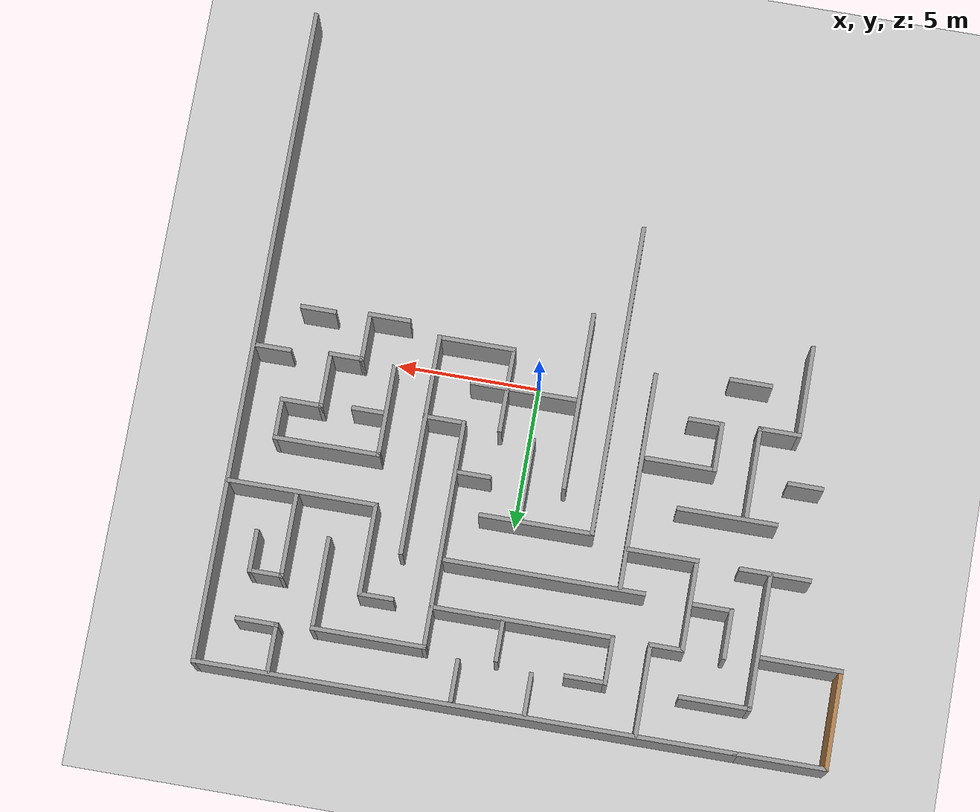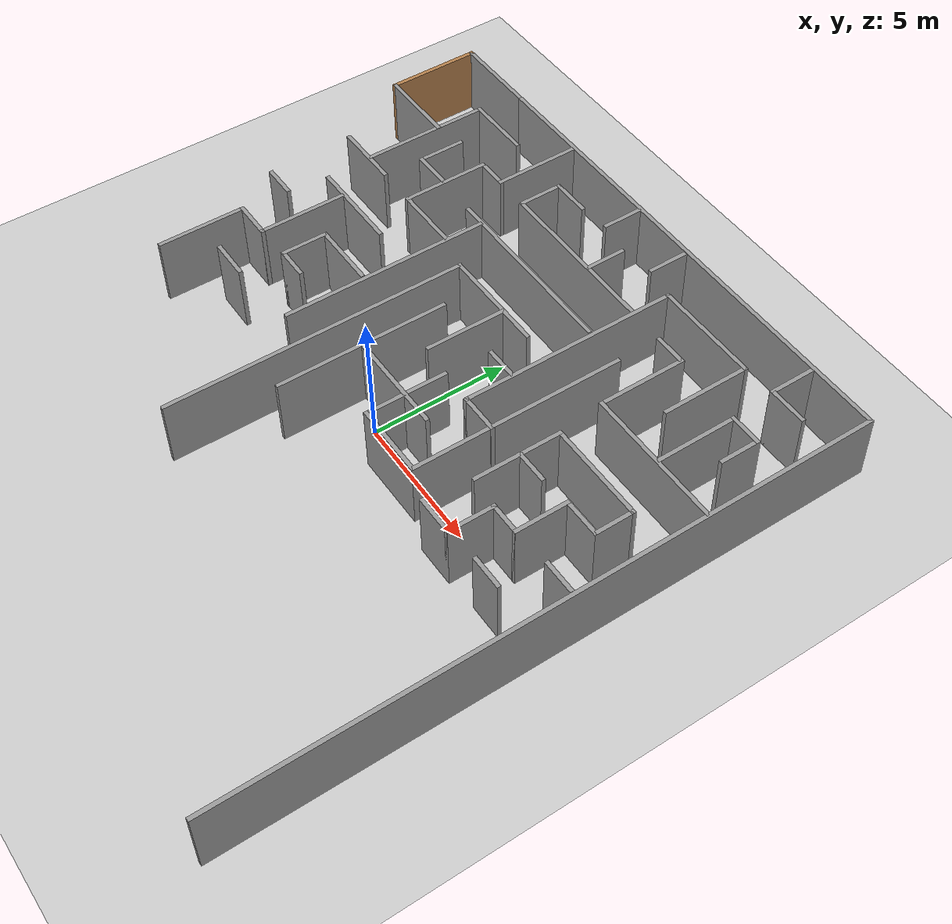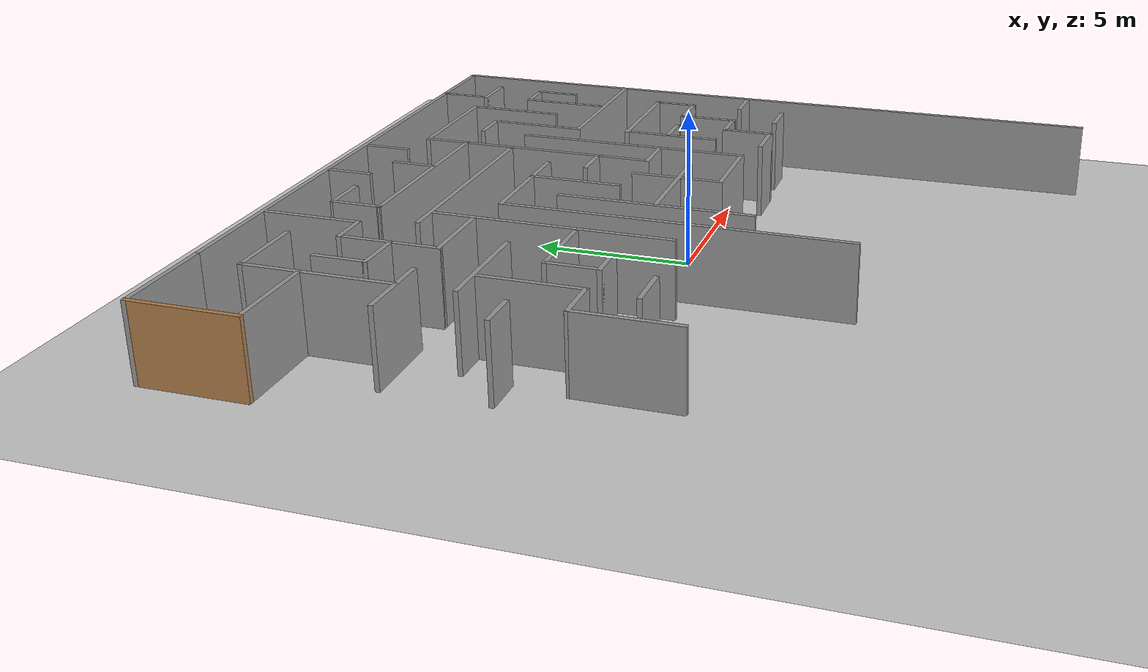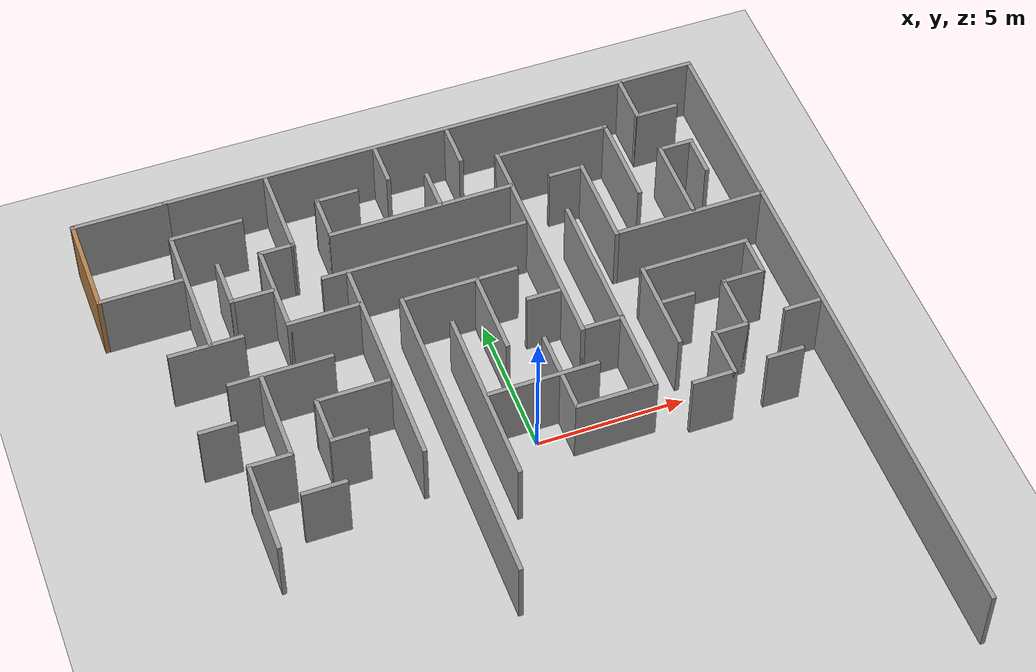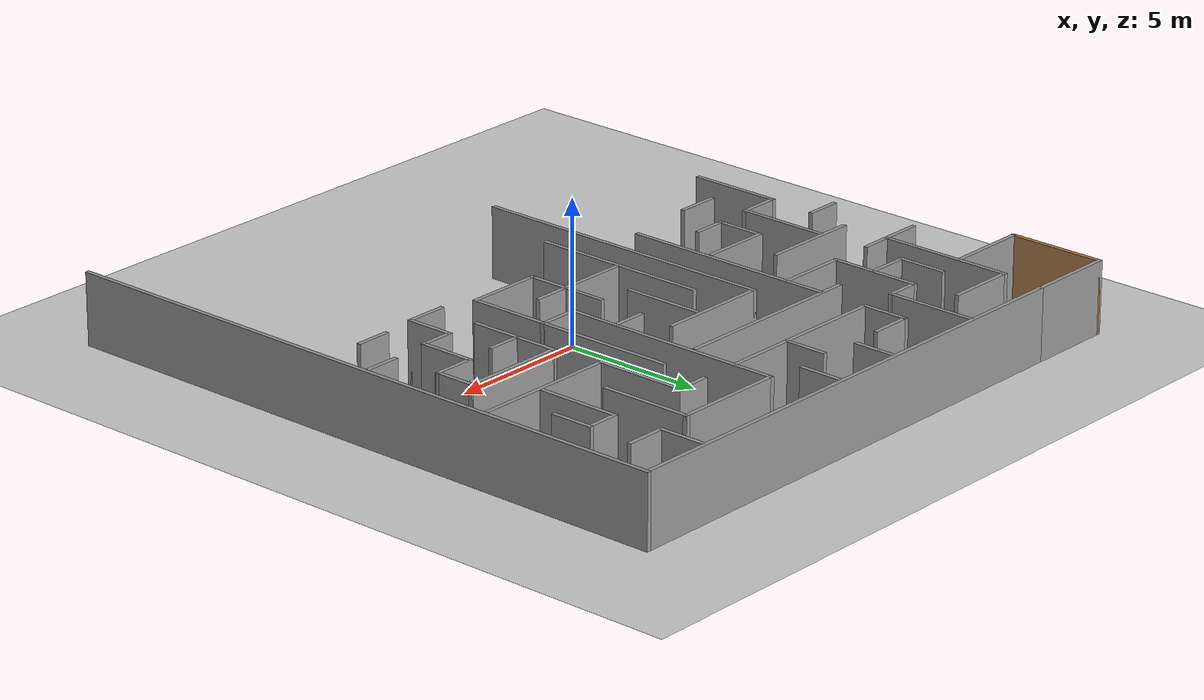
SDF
<sdf version="1.6">
 <world name="default">
  <model name="ground_plane">
   <static>1</static>
   <link name="link">
    <collision name="collision">
     <geometry><plane><normal>0 0 1</normal><size>100 100</size></plane></geometry>
     <surface><friction><ode><mu>100</mu><mu2>50</mu2></ode></friction></surface>
    </collision>
    <visual name="visual">
     <cast_shadows>0</cast_shadows>
     <geometry><plane><normal>0 0 1</normal><size>100 100</size></plane></geometry>
     <material>
      <script><uri>file://media/materials/scripts/gazebo.material</uri><name>Gazebo/Grey</name></script>
     </material>
    </visual>
   </link>
  </model>
  <model name="maze">
   <pose>0.076161 -0.985073 0 0 -0 0</pose>
   <link name="Wall_101">
    <collision name="Wall_101_Collision">
     <geometry><box><size>1.5 0.15 2.5</size></box></geometry>
     <pose>0 0 1.25 0 -0 0</pose>
    </collision>
    <visual name="Wall_101_Visual">
     <pose>0 0 1.25 0 -0 0</pose>
     <geometry><box><size>1.5 0.15 2.5</size></box></geometry>
     <material>
      <script><uri>file://media/materials/scripts/gazebo.material</uri><name>Gazebo/Grey</name></script>
      <ambient>1 1 1 1</ambient>
     </material>
     <meta><layer>0</layer></meta>
    </visual>
    <pose>5.37211 -0.165511 0 0 -0 0</pose>
   </link>
   <link name="Wall_102">
    <collision name="Wall_102_Collision">
     <geometry><box><size>1.75 0.15 2.5</size></box></geometry>
     <pose>0 0 1.25 0 -0 0</pose>
    </collision>
    <visual name="Wall_102_Visual">
     <pose>0 0 1.25 0 -0 0</pose>
     <geometry><box><size>1.75 0.15 2.5</size></box></geometry>
     <material>
      <script><uri>file://media/materials/scripts/gazebo.material</uri><name>Gazebo/Grey</name></script>
      <ambient>1 1 1 1</ambient>
     </material>
     <meta><layer>0</layer></meta>
    </visual>
    <pose>6.04711 0.634489 0 0 -0 1.5708</pose>
   </link>
   <link name="Wall_103">
    <collision name="Wall_103_Collision">
     <geometry><box><size>1.25 0.15 2.5</size></box></geometry>
     <pose>0 0 1.25 0 -0 0</pose>
    </collision>
    <visual name="Wall_103_Visual">
     <pose>0 0 1.25 0 -0 0</pose>
     <geometry><box><size>1.25 0.15 2.5</size></box></geometry>
     <material>
      <script><uri>file://media/materials/scripts/gazebo.material</uri><name>Gazebo/Grey</name></script>
      <ambient>1 1 1 1</ambient>
     </material>
     <meta><layer>0</layer></meta>
    </visual>
    <pose>6.59711 1.43449 0 0 -0 0</pose>
   </link>
   <link name="Wall_113">
    <collision name="Wall_113_Collision">
     <geometry><box><size>3 0.15 2.5</size></box></geometry>
     <pose>0 0 1.25 0 -0 0</pose>
    </collision>
    <visual name="Wall_113_Visual">
     <pose>0 0 1.25 0 -0 0</pose>
     <geometry><box><size>3 0.15 2.5</size></box></geometry>
     <material>
      <script><uri>file://media/materials/scripts/gazebo.material</uri><name>Gazebo/Grey</name></script>
      <ambient>1 1 1 1</ambient>
     </material>
     <meta><layer>0</layer></meta>
    </visual>
    <pose>-0.252522 4.66298 0 0 -0 -1.5708</pose>
   </link>
   <link name="Wall_115">
    <collision name="Wall_115_Collision">
     <geometry><box><size>6.25 0.15 2.5</size></box></geometry>
     <pose>0 0 1.25 0 -0 0</pose>
    </collision>
    <visual name="Wall_115_Visual">
     <pose>0 0 1.25 0 -0 0</pose>
     <geometry><box><size>6.25 0.15 2.5</size></box></geometry>
     <material>
      <script><uri>file://media/materials/scripts/gazebo.material</uri><name>Gazebo/Grey</name></script>
      <ambient>1 1 1 1</ambient>
     </material>
     <meta><layer>0</layer></meta>
    </visual>
    <pose>-1.56507 1.61746 0 0 -0 -1.5708</pose>
   </link>
   <link name="Wall_117">
    <collision name="Wall_117_Collision">
     <geometry><box><size>3.75 0.15 2.5</size></box></geometry>
     <pose>0 0 1.25 0 -0 0</pose>
    </collision>
    <visual name="Wall_117_Visual">
     <pose>0 0 1.25 0 -0 0</pose>
     <geometry><box><size>3.75 0.15 2.5</size></box></geometry>
     <material>
      <script><uri>file://media/materials/scripts/gazebo.material</uri><name>Gazebo/Grey</name></script>
      <ambient>1 1 1 1</ambient>
     </material>
     <meta><layer>0</layer></meta>
    </visual>
    <pose>0.354254 1.60485 0 0 -0 0</pose>
   </link>
   <link name="Wall_119">
    <collision name="Wall_119_Collision">
     <geometry><box><size>3 0.15 2.5</size></box></geometry>
     <pose>0 0 1.25 0 -0 0</pose>
    </collision>
    <visual name="Wall_119_Visual">
     <pose>0 0 1.25 0 -0 0</pose>
     <geometry><box><size>3 0.15 2.5</size></box></geometry>
     <material>
      <script><uri>file://media/materials/scripts/gazebo.material</uri><name>Gazebo/Grey</name></script>
      <ambient>1 1 1 1</ambient>
     </material>
     <meta><layer>0</layer></meta>
    </visual>
    <pose>0.940702 1.6515 0 0 -0 -1.5708</pose>
   </link>
   <link name="Wall_120">
    <collision name="Wall_120_Collision">
     <geometry><box><size>2.75 0.15 2.5</size></box></geometry>
     <pose>0 0 1.25 0 -0 0</pose>
    </collision>
    <visual name="Wall_120_Visual">
     <pose>0 0 1.25 0 -0 0</pose>
     <geometry><box><size>2.75 0.15 2.5</size></box></geometry>
     <material>
      <script><uri>file://media/materials/scripts/gazebo.material</uri><name>Gazebo/Grey</name></script>
      <ambient>1 1 1 1</ambient>
     </material>
     <meta><layer>0</layer></meta>
    </visual>
    <pose>2.2407 0.226497 0 0 -0 0</pose>
   </link>
   <link name="Wall_122">
    <collision name="Wall_122_Collision">
     <geometry><box><size>7.75 0.15 2.5</size></box></geometry>
     <pose>0 0 1.25 0 -0 0</pose>
    </collision>
    <visual name="Wall_122_Visual">
     <pose>0 0 1.25 0 -0 0</pose>
     <geometry><box><size>7.75 0.15 2.5</size></box></geometry>
     <material>
      <script><uri>file://media/materials/scripts/gazebo.material</uri><name>Gazebo/Grey</name></script>
      <ambient>1 1 1 1</ambient>
     </material>
     <meta><layer>0</layer></meta>
    </visual>
    <pose>3.5407 4.0265 0 0 -0 1.5708</pose>
   </link>
   <link name="Wall_13">
    <collision name="Wall_13_Collision">
     <geometry><box><size>3.25 0.15 2.5</size></box></geometry>
     <pose>0 0 1.25 0 -0 0</pose>
    </collision>
    <visual name="Wall_13_Visual">
     <pose>0 0 1.25 0 -0 0</pose>
     <geometry><box><size>3.25 0.15 2.5</size></box></geometry>
     <material>
      <script><uri>file://media/materials/scripts/gazebo.material</uri><name>Gazebo/Grey</name></script>
      <ambient>1 1 1 1</ambient>
     </material>
     <meta><layer>0</layer></meta>
    </visual>
    <pose>-5.35339 11.0598 0 0 -0 -1.5708</pose>
   </link>
   <link name="Wall_14">
    <collision name="Wall_14_Collision">
     <geometry><box><size>1.25 0.15 2.5</size></box></geometry>
     <pose>0 0 1.25 0 -0 0</pose>
    </collision>
    <visual name="Wall_14_Visual">
     <pose>0 0 1.25 0 -0 0</pose>
     <geometry><box><size>1.25 0.15 2.5</size></box></geometry>
     <material>
      <script><uri>file://media/materials/scripts/gazebo.material</uri><name>Gazebo/Grey</name></script>
      <ambient>1 1 1 1</ambient>
     </material>
     <meta><layer>0</layer></meta>
    </visual>
    <pose>-5.90339 9.5098 0 0 -0 3.14159</pose>
   </link>
   <link name="Wall_149">
    <collision name="Wall_149_Collision">
     <geometry><box><size>2 0.15 2.5</size></box></geometry>
     <pose>0 0 1.25 0 -0 0</pose>
    </collision>
    <visual name="Wall_149_Visual">
     <pose>0 0 1.25 0 -0 0</pose>
     <geometry><box><size>2 0.15 2.5</size></box></geometry>
     <material>
      <script><uri>file://media/materials/scripts/gazebo.material</uri><name>Gazebo/Grey</name></script>
      <ambient>1 1 1 1</ambient>
     </material>
     <meta><layer>0</layer></meta>
    </visual>
    <pose>7.14711 2.35949 0 0 -0 1.5708</pose>
   </link>
   <link name="Wall_15">
    <collision name="Wall_15_Collision">
     <geometry><box><size>3.25 0.15 2.5</size></box></geometry>
     <pose>0 0 1.25 0 -0 0</pose>
    </collision>
    <visual name="Wall_15_Visual">
     <pose>0 0 1.25 0 -0 0</pose>
     <geometry><box><size>3.25 0.15 2.5</size></box></geometry>
     <material>
      <script><uri>file://media/materials/scripts/gazebo.material</uri><name>Gazebo/Grey</name></script>
      <ambient>1 1 1 1</ambient>
     </material>
     <meta><layer>0</layer></meta>
    </visual>
    <pose>-6.45339 7.9598 0 0 -0 -1.5708</pose>
   </link>
   <link name="Wall_150">
    <collision name="Wall_150_Collision">
     <geometry><box><size>1.5 0.15 2.5</size></box></geometry>
     <pose>0 0 1.25 0 -0 0</pose>
    </collision>
    <visual name="Wall_150_Visual">
     <pose>0 0 1.25 0 -0 0</pose>
     <geometry><box><size>1.5 0.15 2.5</size></box></geometry>
     <material>
      <script><uri>file://media/materials/scripts/gazebo.material</uri><name>Gazebo/Grey</name></script>
      <ambient>1 1 1 1</ambient>
     </material>
     <meta><layer>0</layer></meta>
    </visual>
    <pose>7.82211 3.28449 0 0 -0 0</pose>
   </link>
   <link name="Wall_151">
    <collision name="Wall_151_Collision">
     <geometry><box><size>1.5 0.15 2.5</size></box></geometry>
     <pose>0 0 1.25 0 -0 0</pose>
    </collision>
    <visual name="Wall_151_Visual">
     <pose>0 0 1.25 0 -0 0</pose>
     <geometry><box><size>1.5 0.15 2.5</size></box></geometry>
     <material>
      <script><uri>file://media/materials/scripts/gazebo.material</uri><name>Gazebo/Grey</name></script>
      <ambient>1 1 1 1</ambient>
     </material>
     <meta><layer>0</layer></meta>
    </visual>
    <pose>8.49711 3.95949 0 0 -0 1.5708</pose>
   </link>
   <link name="Wall_152">
    <collision name="Wall_152_Collision">
     <geometry><box><size>3.75 0.15 2.5</size></box></geometry>
     <pose>0 0 1.25 0 -0 0</pose>
    </collision>
    <visual name="Wall_152_Visual">
     <pose>0 0 1.25 0 -0 0</pose>
     <geometry><box><size>3.75 0.15 2.5</size></box></geometry>
     <material>
      <script><uri>file://media/materials/scripts/gazebo.material</uri><name>Gazebo/Grey</name></script>
      <ambient>1 1 1 1</ambient>
     </material>
     <meta><layer>0</layer></meta>
    </visual>
    <pose>6.69711 4.63449 0 0 -0 3.14159</pose>
   </link>
   <link name="Wall_153">
    <collision name="Wall_153_Collision">
     <geometry><box><size>3.25 0.15 2.5</size></box></geometry>
     <pose>0 0 1.25 0 -0 0</pose>
    </collision>
    <visual name="Wall_153_Visual">
     <pose>0 0 1.25 0 -0 0</pose>
     <geometry><box><size>3.25 0.15 2.5</size></box></geometry>
     <material>
      <script><uri>file://media/materials/scripts/gazebo.material</uri><name>Gazebo/Grey</name></script>
      <ambient>1 1 1 1</ambient>
     </material>
     <meta><layer>0</layer></meta>
    </visual>
    <pose>4.89711 3.08449 0 0 -0 -1.5708</pose>
   </link>
   <link name="Wall_155">
    <collision name="Wall_155_Collision">
     <geometry><box><size>1.25 0.15 2.5</size></box></geometry>
     <pose>0 0 1.25 0 -0 0</pose>
    </collision>
    <visual name="Wall_155_Visual">
     <pose>0 0 1.25 0 -0 0</pose>
     <geometry><box><size>1.25 0.15 2.5</size></box></geometry>
     <material>
      <script><uri>file://media/materials/scripts/gazebo.material</uri><name>Gazebo/Grey</name></script>
      <ambient>1 1 1 1</ambient>
     </material>
     <meta><layer>0</layer></meta>
    </visual>
    <pose>5.47255 3.17028 0 0 -0 0</pose>
   </link>
   <link name="Wall_157">
    <collision name="Wall_157_Collision">
     <geometry><box><size>1.25 0.15 2.5</size></box></geometry>
     <pose>0 0 1.25 0 -0 0</pose>
    </collision>
    <visual name="Wall_157_Visual">
     <pose>0 0 1.25 0 -0 0</pose>
     <geometry><box><size>1.25 0.15 2.5</size></box></geometry>
     <material>
      <script><uri>file://media/materials/scripts/gazebo.material</uri><name>Gazebo/Grey</name></script>
      <ambient>1 1 1 1</ambient>
     </material>
     <meta><layer>0</layer></meta>
    </visual>
    <pose>4.12369 9.46497 0 0 -0 0</pose>
   </link>
   <link name="Wall_158">
    <collision name="Wall_158_Collision">
     <geometry><box><size>3.25 0.15 2.5</size></box></geometry>
     <pose>0 0 1.25 0 -0 0</pose>
    </collision>
    <visual name="Wall_158_Visual">
     <pose>0 0 1.25 0 -0 0</pose>
     <geometry><box><size>3.25 0.15 2.5</size></box></geometry>
     <material>
      <script><uri>file://media/materials/scripts/gazebo.material</uri><name>Gazebo/Grey</name></script>
      <ambient>1 1 1 1</ambient>
     </material>
     <meta><layer>0</layer></meta>
    </visual>
    <pose>4.67369 7.91497 0 0 -0 -1.5708</pose>
   </link>
   <link name="Wall_159">
    <collision name="Wall_159_Collision">
     <geometry><box><size>5.25 0.15 2.5</size></box></geometry>
     <pose>0 0 1.25 0 -0 0</pose>
    </collision>
    <visual name="Wall_159_Visual">
     <pose>0 0 1.25 0 -0 0</pose>
     <geometry><box><size>5.25 0.15 2.5</size></box></geometry>
     <material>
      <script><uri>file://media/materials/scripts/gazebo.material</uri><name>Gazebo/Grey</name></script>
      <ambient>1 1 1 1</ambient>
     </material>
     <meta><layer>0</layer></meta>
    </visual>
    <pose>7.22369 6.36497 0 0 -0 0</pose>
   </link>
   <link name="Wall_16">
    <collision name="Wall_16_Collision">
     <geometry><box><size>2.5 0.15 2.5</size></box></geometry>
     <pose>0 0 1.25 0 -0 0</pose>
    </collision>
    <visual name="Wall_16_Visual">
     <pose>0 0 1.25 0 -0 0</pose>
     <geometry><box><size>2.5 0.15 2.5</size></box></geometry>
     <material>
      <script><uri>file://media/materials/scripts/gazebo.material</uri><name>Gazebo/Grey</name></script>
      <ambient>1 1 1 1</ambient>
     </material>
     <meta><layer>0</layer></meta>
    </visual>
    <pose>-5.27839 6.4098 0 0 -0 0</pose>
   </link>
   <link name="Wall_161">
    <collision name="Wall_161_Collision">
     <geometry><box><size>3 0.15 2.5</size></box></geometry>
     <pose>0 0 1.25 0 -0 0</pose>
    </collision>
    <visual name="Wall_161_Visual">
     <pose>0 0 1.25 0 -0 0</pose>
     <geometry><box><size>3 0.15 2.5</size></box></geometry>
     <material>
      <script><uri>file://media/materials/scripts/gazebo.material</uri><name>Gazebo/Grey</name></script>
      <ambient>1 1 1 1</ambient>
     </material>
     <meta><layer>0</layer></meta>
    </visual>
    <pose>7.41276 7.88097 0 0 -0 1.5708</pose>
   </link>
   <link name="Wall_162">
    <collision name="Wall_162_Collision">
     <geometry><box><size>1.25 0.15 2.5</size></box></geometry>
     <pose>0 0 1.25 0 -0 0</pose>
    </collision>
    <visual name="Wall_162_Visual">
     <pose>0 0 1.25 0 -0 0</pose>
     <geometry><box><size>1.25 0.15 2.5</size></box></geometry>
     <material>
      <script><uri>file://media/materials/scripts/gazebo.material</uri><name>Gazebo/Grey</name></script>
      <ambient>1 1 1 1</ambient>
     </material>
     <meta><layer>0</layer></meta>
    </visual>
    <pose>7.96276 9.30597 0 0 -0 0</pose>
   </link>
   <link name="Wall_163">
    <collision name="Wall_163_Collision">
     <geometry><box><size>1.5 0.15 2.5</size></box></geometry>
     <pose>0 0 1.25 0 -0 0</pose>
    </collision>
    <visual name="Wall_163_Visual">
     <pose>0 0 1.25 0 -0 0</pose>
     <geometry><box><size>1.5 0.15 2.5</size></box></geometry>
     <material>
      <script><uri>file://media/materials/scripts/gazebo.material</uri><name>Gazebo/Grey</name></script>
      <ambient>1 1 1 1</ambient>
     </material>
     <meta><layer>0</layer></meta>
    </visual>
    <pose>8.51276 8.63097 0 0 -0 -1.5708</pose>
   </link>
   <link name="Wall_167">
    <collision name="Wall_167_Collision">
     <geometry><box><size>1.5 0.15 2.5</size></box></geometry>
     <pose>0 0 1.25 0 -0 0</pose>
    </collision>
    <visual name="Wall_167_Visual">
     <pose>0 0 1.25 0 -0 0</pose>
     <geometry><box><size>1.5 0.15 2.5</size></box></geometry>
     <material>
      <script><uri>file://media/materials/scripts/gazebo.material</uri><name>Gazebo/Grey</name></script>
      <ambient>1 1 1 1</ambient>
     </material>
     <meta><layer>0</layer></meta>
    </visual>
    <pose>7.94942 10.9894 0 0 -0 0</pose>
   </link>
   <link name="Wall_169">
    <collision name="Wall_169_Collision">
     <geometry><box><size>1.75 0.15 2.5</size></box></geometry>
     <pose>0 0 1.25 0 -0 0</pose>
    </collision>
    <visual name="Wall_169_Visual">
     <pose>0 0 1.25 0 -0 0</pose>
     <geometry><box><size>1.75 0.15 2.5</size></box></geometry>
     <material>
      <script><uri>file://media/materials/scripts/gazebo.material</uri><name>Gazebo/Grey</name></script>
      <ambient>1 1 1 1</ambient>
     </material>
     <meta><layer>0</layer></meta>
    </visual>
    <pose>7.27442 11.7894 0 0 -0 1.5708</pose>
   </link>
   <link name="Wall_171">
    <collision name="Wall_171_Collision">
     <geometry><box><size>1.5 0.15 2.5</size></box></geometry>
     <pose>0 0 1.25 0 -0 0</pose>
    </collision>
    <visual name="Wall_171_Visual">
     <pose>0 0 1.25 0 -0 0</pose>
     <geometry><box><size>1.5 0.15 2.5</size></box></geometry>
     <material>
      <script><uri>file://media/materials/scripts/gazebo.material</uri><name>Gazebo/Grey</name></script>
      <ambient>1 1 1 1</ambient>
     </material>
     <meta><layer>0</layer></meta>
    </visual>
    <pose>0.993011 11.8294 0 0 -0 -1.5708</pose>
   </link>
   <link name="Wall_173">
    <collision name="Wall_173_Collision">
     <geometry><box><size>1.25 0.15 2.5</size></box></geometry>
     <pose>0 0 1.25 0 -0 0</pose>
    </collision>
    <visual name="Wall_173_Visual">
     <pose>0 0 1.25 0 -0 0</pose>
     <geometry><box><size>1.25 0.15 2.5</size></box></geometry>
     <material>
      <script><uri>file://media/materials/scripts/gazebo.material</uri><name>Gazebo/Grey</name></script>
      <ambient>1 1 1 1</ambient>
     </material>
     <meta><layer>0</layer></meta>
    </visual>
    <pose>1.58262 4.76575 0 0 -0 0</pose>
   </link>
   <link name="Wall_178">
    <collision name="Wall_178_Collision">
     <geometry><box><size>1.25 0.15 2.5</size></box></geometry>
     <pose>0 0 1.25 0 -0 0</pose>
    </collision>
    <visual name="Wall_178_Visual">
     <pose>0 0 1.25 0 -0 0</pose>
     <geometry><box><size>1.25 0.15 2.5</size></box></geometry>
     <material>
      <script><uri>file://media/materials/scripts/gazebo.material</uri><name>Gazebo/Grey</name></script>
      <ambient>1 1 1 1</ambient>
     </material>
     <meta><layer>0</layer></meta>
    </visual>
    <pose>9.12241 1.54923 0 0 -0 0</pose>
   </link>
   <link name="Wall_18">
    <collision name="Wall_18_Collision">
     <geometry><box><size>1.75 0.15 2.5</size></box></geometry>
     <pose>0 0 1.25 0 -0 0</pose>
    </collision>
    <visual name="Wall_18_Visual">
     <pose>0 0 1.25 0 -0 0</pose>
     <geometry><box><size>1.75 0.15 2.5</size></box></geometry>
     <material>
      <script><uri>file://media/materials/scripts/gazebo.material</uri><name>Gazebo/Grey</name></script>
      <ambient>1 1 1 1</ambient>
     </material>
     <meta><layer>0</layer></meta>
    </visual>
    <pose>-7.88456 8.70516 0 0 -0 -1.5708</pose>
   </link>
   <link name="Wall_180">
    <collision name="Wall_180_Collision">
     <geometry><box><size>1.25 0.15 2.5</size></box></geometry>
     <pose>0 0 1.25 0 -0 0</pose>
    </collision>
    <visual name="Wall_180_Visual">
     <pose>0 0 1.25 0 -0 0</pose>
     <geometry><box><size>1.25 0.15 2.5</size></box></geometry>
     <material>
      <script><uri>file://media/materials/scripts/gazebo.material</uri><name>Gazebo/Grey</name></script>
      <ambient>1 1 1 1</ambient>
     </material>
     <meta><layer>0</layer></meta>
    </visual>
    <pose>7.84272 -0.041733 0 0 -0 0</pose>
   </link>
   <link name="Wall_187">
    <collision name="Wall_187_Collision">
     <geometry><box><size>3.25 0.15 2.5</size></box></geometry>
     <pose>0 0 1.25 0 -0 0</pose>
    </collision>
    <visual name="Wall_187_Visual">
     <pose>0 0 1.25 0 -0 0</pose>
     <geometry><box><size>3.25 0.15 2.5</size></box></geometry>
     <material>
      <script><uri>file://media/materials/scripts/gazebo.material</uri><name>Gazebo/Grey</name></script>
      <ambient>1 1 1 1</ambient>
     </material>
     <meta><layer>0</layer></meta>
    </visual>
    <pose>-10.3182 12.6653 0 0 -0 3.14159</pose>
   </link>
   <link name="Wall_188">
    <collision name="Wall_188_Collision">
     <geometry><box><size>3.5 0.15 2.5</size></box></geometry>
     <pose>0 0 1.25 0 -0 0</pose>
    </collision>
    <visual name="Wall_188_Visual">
     <pose>0 0 1.25 0 -0 0</pose>
     <geometry><box><size>3.5 0.15 2.5</size></box></geometry>
     <material>
      <script><uri>file://media/materials/scripts/gazebo.material</uri><name>Gazebo/Wood</name></script>
      <ambient>1 1 1 1</ambient>
     </material>
     <meta><layer>0</layer></meta>
    </visual>
    <pose>-11.8682 10.9903 0 0 -0 -1.5708</pose>
   </link>
   <link name="Wall_189">
    <collision name="Wall_189_Collision">
     <geometry><box><size>3 0.15 2.5</size></box></geometry>
     <pose>0 0 1.25 0 -0 0</pose>
    </collision>
    <visual name="Wall_189_Visual">
     <pose>0 0 1.25 0 -0 0</pose>
     <geometry><box><size>3 0.15 2.5</size></box></geometry>
     <material>
      <script><uri>file://media/materials/scripts/gazebo.material</uri><name>Gazebo/Grey</name></script>
      <ambient>1 1 1 1</ambient>
     </material>
     <meta><layer>0</layer></meta>
    </visual>
    <pose>-10.4432 9.31531 0 0 -0 0</pose>
   </link>
   <link name="Wall_19">
    <collision name="Wall_19_Collision">
     <geometry><box><size>1.5 0.15 2.5</size></box></geometry>
     <pose>0 0 1.25 0 -0 0</pose>
    </collision>
    <visual name="Wall_19_Visual">
     <pose>0 0 1.25 0 -0 0</pose>
     <geometry><box><size>1.5 0.15 2.5</size></box></geometry>
     <material>
      <script><uri>file://media/materials/scripts/gazebo.material</uri><name>Gazebo/Grey</name></script>
      <ambient>1 1 1 1</ambient>
     </material>
     <meta><layer>0</layer></meta>
    </visual>
    <pose>-7.20956 7.90516 0 0 -0 0</pose>
   </link>
   <link name="Wall_2">
    <collision name="Wall_2_Collision">
     <geometry><box><size>18.75 0.15 2.5</size></box></geometry>
     <pose>0 0 1.25 0 -0 0</pose>
    </collision>
    <visual name="Wall_2_Visual">
     <pose>0 0 1.25 0 -0 0</pose>
     <geometry><box><size>18.75 0.15 2.5</size></box></geometry>
     <material>
      <script><uri>file://media/materials/scripts/gazebo.material</uri><name>Gazebo/Grey</name></script>
      <ambient>1 1 1 1</ambient>
     </material>
     <meta><layer>0</layer></meta>
    </visual>
    <pose>0.531805 12.6653 0 0 -0 0</pose>
   </link>
   <link name="Wall_21">
    <collision name="Wall_21_Collision">
     <geometry><box><size>1.5 0.15 2.5</size></box></geometry>
     <pose>0 0 1.25 0 -0 0</pose>
    </collision>
    <visual name="Wall_21_Visual">
     <pose>0 0 1.25 0 -0 0</pose>
     <geometry><box><size>1.5 0.15 2.5</size></box></geometry>
     <material>
      <script><uri>file://media/materials/scripts/gazebo.material</uri><name>Gazebo/Grey</name></script>
      <ambient>1 1 1 1</ambient>
     </material>
     <meta><layer>0</layer></meta>
    </visual>
    <pose>-1.54038 11.8707 0 0 -0 -1.5708</pose>
   </link>
   <link name="Wall_23">
    <collision name="Wall_23_Collision">
     <geometry><box><size>1.5 0.15 2.5</size></box></geometry>
     <pose>0 0 1.25 0 -0 0</pose>
    </collision>
    <visual name="Wall_23_Visual">
     <pose>0 0 1.25 0 -0 0</pose>
     <geometry><box><size>1.5 0.15 2.5</size></box></geometry>
     <material>
      <script><uri>file://media/materials/scripts/gazebo.material</uri><name>Gazebo/Grey</name></script>
      <ambient>1 1 1 1</ambient>
     </material>
     <meta><layer>0</layer></meta>
    </visual>
    <pose>-3.38072 11.0448 0 0 -0 3.14159</pose>
   </link>
   <link name="Wall_24">
    <collision name="Wall_24_Collision">
     <geometry><box><size>1.65825 0.15 2.5</size></box></geometry>
     <pose>0 0 1.25 0 -0 0</pose>
    </collision>
    <visual name="Wall_24_Visual">
     <pose>0 0 1.25 0 -0 0</pose>
     <geometry><box><size>1.65825 0.15 2.5</size></box></geometry>
     <material>
      <script><uri>file://media/materials/scripts/gazebo.material</uri><name>Gazebo/Grey</name></script>
      <ambient>1 1 1 1</ambient>
     </material>
     <meta><layer>0</layer></meta>
    </visual>
    <pose>-4.05594 10.2907 0 0 -0 -1.57109</pose>
   </link>
   <link name="Wall_25">
    <collision name="Wall_25_Collision">
     <geometry><box><size>6.36 0.15 2.5</size></box></geometry>
     <pose>0 0 1.25 0 -0 0</pose>
    </collision>
    <visual name="Wall_25_Visual">
     <pose>0 0 1.25 0 -0 0</pose>
     <geometry><box><size>6.36 0.15 2.5</size></box></geometry>
     <material>
      <script><uri>file://media/materials/scripts/gazebo.material</uri><name>Gazebo/Grey</name></script>
      <ambient>1 1 1 1</ambient>
     </material>
     <meta><layer>0</layer></meta>
    </visual>
    <pose>-0.951161 9.49081 0 0 -0 0</pose>
   </link>
   <link name="Wall_27">
    <collision name="Wall_27_Collision">
     <geometry><box><size>1.5 0.15 2.5</size></box></geometry>
     <pose>0 0 1.25 0 -0 0</pose>
    </collision>
    <visual name="Wall_27_Visual">
     <pose>0 0 1.25 0 -0 0</pose>
     <geometry><box><size>1.5 0.15 2.5</size></box></geometry>
     <material>
      <script><uri>file://media/materials/scripts/gazebo.material</uri><name>Gazebo/Grey</name></script>
      <ambient>1 1 1 1</ambient>
     </material>
     <meta><layer>0</layer></meta>
    </visual>
    <pose>-0.284084 10.2206 0 0 -0 -1.5708</pose>
   </link>
   <link name="Wall_29">
    <collision name="Wall_29_Collision">
     <geometry><box><size>3.25 0.15 2.5</size></box></geometry>
     <pose>0 0 1.25 0 -0 0</pose>
    </collision>
    <visual name="Wall_29_Visual">
     <pose>0 0 1.25 0 -0 0</pose>
     <geometry><box><size>3.25 0.15 2.5</size></box></geometry>
     <material>
      <script><uri>file://media/materials/scripts/gazebo.material</uri><name>Gazebo/Grey</name></script>
      <ambient>1 1 1 1</ambient>
     </material>
     <meta><layer>0</layer></meta>
    </visual>
    <pose>6.04956 9.34284 0 0 -0 1.5708</pose>
   </link>
   <link name="Wall_3">
    <collision name="Wall_3_Collision">
     <geometry><box><size>23.25 0.15 2.5</size></box></geometry>
     <pose>0 0 1.25 0 -0 0</pose>
    </collision>
    <visual name="Wall_3_Visual">
     <pose>0 0 1.25 0 -0 0</pose>
     <geometry><box><size>23.25 0.15 2.5</size></box></geometry>
     <material>
      <script><uri>file://media/materials/scripts/gazebo.material</uri><name>Gazebo/Grey</name></script>
      <ambient>1 1 1 1</ambient>
     </material>
     <meta><layer>0</layer></meta>
    </visual>
    <pose>9.8318 1.11531 0 0 -0 -1.5708</pose>
   </link>
   <link name="Wall_30">
    <collision name="Wall_30_Collision">
     <geometry><box><size>4 0.15 2.5</size></box></geometry>
     <pose>0 0 1.25 0 -0 0</pose>
    </collision>
    <visual name="Wall_30_Visual">
     <pose>0 0 1.25 0 -0 0</pose>
     <geometry><box><size>4 0.15 2.5</size></box></geometry>
     <material>
      <script><uri>file://media/materials/scripts/gazebo.material</uri><name>Gazebo/Grey</name></script>
      <ambient>1 1 1 1</ambient>
     </material>
     <meta><layer>0</layer></meta>
    </visual>
    <pose>4.12456 10.8928 0 0 -0 3.14159</pose>
   </link>
   <link name="Wall_31">
    <collision name="Wall_31_Collision">
     <geometry><box><size>8 0.15 2.5</size></box></geometry>
     <pose>0 0 1.25 0 -0 0</pose>
    </collision>
    <visual name="Wall_31_Visual">
     <pose>0 0 1.25 0 -0 0</pose>
     <geometry><box><size>8 0.15 2.5</size></box></geometry>
     <material>
      <script><uri>file://media/materials/scripts/gazebo.material</uri><name>Gazebo/Grey</name></script>
      <ambient>1 1 1 1</ambient>
     </material>
     <meta><layer>0</layer></meta>
    </visual>
    <pose>2.19956 6.96784 0 0 -0 -1.5708</pose>
   </link>
   <link name="Wall_32">
    <collision name="Wall_32_Collision">
     <geometry><box><size>1.5 0.15 2.5</size></box></geometry>
     <pose>0 0 1.25 0 -0 0</pose>
    </collision>
    <visual name="Wall_32_Visual">
     <pose>0 0 1.25 0 -0 0</pose>
     <geometry><box><size>1.5 0.15 2.5</size></box></geometry>
     <material>
      <script><uri>file://media/materials/scripts/gazebo.material</uri><name>Gazebo/Grey</name></script>
      <ambient>1 1 1 1</ambient>
     </material>
     <meta><layer>0</layer></meta>
    </visual>
    <pose>2.87456 3.04284 0 0 -0 0</pose>
   </link>
   <link name="Wall_34">
    <collision name="Wall_34_Collision">
     <geometry><box><size>7 0.15 2.5</size></box></geometry>
     <pose>0 0 1.25 0 -0 0</pose>
    </collision>
    <visual name="Wall_34_Visual">
     <pose>0 0 1.25 0 -0 0</pose>
     <geometry><box><size>7 0.15 2.5</size></box></geometry>
     <material>
      <script><uri>file://media/materials/scripts/gazebo.material</uri><name>Gazebo/Grey</name></script>
      <ambient>1 1 1 1</ambient>
     </material>
     <meta><layer>0</layer></meta>
    </visual>
    <pose>-1.414 7.82786 0 0 -0 0</pose>
   </link>
   <link name="Wall_36">
    <collision name="Wall_36_Collision">
     <geometry><box><size>7.6 0.15 2.5</size></box></geometry>
     <pose>0 0 1.25 0 -0 0</pose>
    </collision>
    <visual name="Wall_36_Visual">
     <pose>0 0 1.25 0 -0 0</pose>
     <geometry><box><size>7.6 0.15 2.5</size></box></geometry>
     <material>
      <script><uri>file://media/materials/scripts/gazebo.material</uri><name>Gazebo/Grey</name></script>
      <ambient>1 1 1 1</ambient>
     </material>
     <meta><layer>0</layer></meta>
    </visual>
    <pose>-4.02316 4.01407 0 0 -0 -1.5708</pose>
   </link>
   <link name="Wall_38">
    <collision name="Wall_38_Collision">
     <geometry><box><size>3.5 0.15 2.5</size></box></geometry>
     <pose>0 0 1.25 0 -0 0</pose>
    </collision>
    <visual name="Wall_38_Visual">
     <pose>0 0 1.25 0 -0 0</pose>
     <geometry><box><size>3.5 0.15 2.5</size></box></geometry>
     <material>
      <script><uri>file://media/materials/scripts/gazebo.material</uri><name>Gazebo/Grey</name></script>
      <ambient>1 1 1 1</ambient>
     </material>
     <meta><layer>0</layer></meta>
    </visual>
    <pose>-7.23337 4.72933 0 0 -0 0</pose>
   </link>
   <link name="Wall_40">
    <collision name="Wall_40_Collision">
     <geometry><box><size>1.25 0.15 2.5</size></box></geometry>
     <pose>0 0 1.25 0 -0 0</pose>
    </collision>
    <visual name="Wall_40_Visual">
     <pose>0 0 1.25 0 -0 0</pose>
     <geometry><box><size>1.25 0.15 2.5</size></box></geometry>
     <material>
      <script><uri>file://media/materials/scripts/gazebo.material</uri><name>Gazebo/Grey</name></script>
      <ambient>1 1 1 1</ambient>
     </material>
     <meta><layer>0</layer></meta>
    </visual>
    <pose>-9.70723 3.24213 0 0 -0 0</pose>
   </link>
   <link name="Wall_42">
    <collision name="Wall_42_Collision">
     <geometry><box><size>3.25 0.15 2.5</size></box></geometry>
     <pose>0 0 1.25 0 -0 0</pose>
    </collision>
    <visual name="Wall_42_Visual">
     <pose>0 0 1.25 0 -0 0</pose>
     <geometry><box><size>3.25 0.15 2.5</size></box></geometry>
     <material>
      <script><uri>file://media/materials/scripts/gazebo.material</uri><name>Gazebo/Grey</name></script>
      <ambient>1 1 1 1</ambient>
     </material>
     <meta><layer>0</layer></meta>
    </visual>
    <pose>-7.87078 3.07557 0 0 -0 -1.5708</pose>
   </link>
   <link name="Wall_43">
    <collision name="Wall_43_Collision">
     <geometry><box><size>1.5 0.15 2.5</size></box></geometry>
     <pose>0 0 1.25 0 -0 0</pose>
    </collision>
    <visual name="Wall_43_Visual">
     <pose>0 0 1.25 0 -0 0</pose>
     <geometry><box><size>1.5 0.15 2.5</size></box></geometry>
     <material>
      <script><uri>file://media/materials/scripts/gazebo.material</uri><name>Gazebo/Grey</name></script>
      <ambient>1 1 1 1</ambient>
     </material>
     <meta><layer>0</layer></meta>
    </visual>
    <pose>-8.54578 1.52557 0 0 -0 3.14159</pose>
   </link>
   <link name="Wall_44">
    <collision name="Wall_44_Collision">
     <geometry><box><size>3.25 0.15 2.5</size></box></geometry>
     <pose>0 0 1.25 0 -0 0</pose>
    </collision>
    <visual name="Wall_44_Visual">
     <pose>0 0 1.25 0 -0 0</pose>
     <geometry><box><size>3.25 0.15 2.5</size></box></geometry>
     <material>
      <script><uri>file://media/materials/scripts/gazebo.material</uri><name>Gazebo/Grey</name></script>
      <ambient>1 1 1 1</ambient>
     </material>
     <meta><layer>0</layer></meta>
    </visual>
    <pose>-9.22097 -0.024176 0 0 -0 -1.57092</pose>
   </link>
   <link name="Wall_47">
    <collision name="Wall_47_Collision">
     <geometry><box><size>1.5 0.15 2.5</size></box></geometry>
     <pose>0 0 1.25 0 -0 0</pose>
    </collision>
    <visual name="Wall_47_Visual">
     <pose>0 0 1.25 0 -0 0</pose>
     <geometry><box><size>1.5 0.15 2.5</size></box></geometry>
     <material>
      <script><uri>file://media/materials/scripts/gazebo.material</uri><name>Gazebo/Grey</name></script>
      <ambient>1 1 1 1</ambient>
     </material>
     <meta><layer>0</layer></meta>
    </visual>
    <pose>-7.30068 -0.008978 0 0 -0 3.14159</pose>
   </link>
   <link name="Wall_5">
    <collision name="Wall_5_Collision">
     <geometry><box><size>2.5 0.15 2.5</size></box></geometry>
     <pose>0 0 1.25 0 -0 0</pose>
    </collision>
    <visual name="Wall_5_Visual">
     <pose>0 0 1.25 0 -0 0</pose>
     <geometry><box><size>2.5 0.15 2.5</size></box></geometry>
     <material>
      <script><uri>file://media/materials/scripts/gazebo.material</uri><name>Gazebo/Grey</name></script>
      <ambient>1 1 1 1</ambient>
     </material>
     <meta><layer>0</layer></meta>
    </visual>
    <pose>-7.82599 11.0925 0 0 -0 3.14159</pose>
   </link>
   <link name="Wall_54">
    <collision name="Wall_54_Collision">
     <geometry><box><size>11 0.15 2.5</size></box></geometry>
     <pose>0 0 1.25 0 -0 0</pose>
    </collision>
    <visual name="Wall_54_Visual">
     <pose>0 0 1.25 0 -0 0</pose>
     <geometry><box><size>11 0.15 2.5</size></box></geometry>
     <material>
      <script><uri>file://media/materials/scripts/gazebo.material</uri><name>Gazebo/Grey</name></script>
      <ambient>1 1 1 1</ambient>
     </material>
     <meta><layer>0</layer></meta>
    </visual>
    <pose>-2.77156 0.671867 0 0 -0 1.5708</pose>
   </link>
   <link name="Wall_55">
    <collision name="Wall_55_Collision">
     <geometry><box><size>4 0.15 2.5</size></box></geometry>
     <pose>0 0 1.25 0 -0 0</pose>
    </collision>
    <visual name="Wall_55_Visual">
     <pose>0 0 1.25 0 -0 0</pose>
     <geometry><box><size>4 0.15 2.5</size></box></geometry>
     <material>
      <script><uri>file://media/materials/scripts/gazebo.material</uri><name>Gazebo/Grey</name></script>
      <ambient>1 1 1 1</ambient>
     </material>
     <meta><layer>0</layer></meta>
    </visual>
    <pose>-0.846559 6.09687 0 0 -0 0</pose>
   </link>
   <link name="Wall_57">
    <collision name="Wall_57_Collision">
     <geometry><box><size>2.5 0.15 2.5</size></box></geometry>
     <pose>0 0 1.25 0 -0 0</pose>
    </collision>
    <visual name="Wall_57_Visual">
     <pose>0 0 1.25 0 -0 0</pose>
     <geometry><box><size>2.5 0.15 2.5</size></box></geometry>
     <material>
      <script><uri>file://media/materials/scripts/gazebo.material</uri><name>Gazebo/Grey</name></script>
      <ambient>1 1 1 1</ambient>
     </material>
     <meta><layer>0</layer></meta>
    </visual>
    <pose>-5.37437 3.19662 0 0 -0 3.14159</pose>
   </link>
   <link name="Wall_58">
    <collision name="Wall_58_Collision">
     <geometry><box><size>1.75 0.15 2.5</size></box></geometry>
     <pose>0 0 1.25 0 -0 0</pose>
    </collision>
    <visual name="Wall_58_Visual">
     <pose>0 0 1.25 0 -0 0</pose>
     <geometry><box><size>1.75 0.15 2.5</size></box></geometry>
     <material>
      <script><uri>file://media/materials/scripts/gazebo.material</uri><name>Gazebo/Grey</name></script>
      <ambient>1 1 1 1</ambient>
     </material>
     <meta><layer>0</layer></meta>
    </visual>
    <pose>-6.54936 2.39662 0 0 -0 -1.5708</pose>
   </link>
   <link name="Wall_59">
    <collision name="Wall_59_Collision">
     <geometry><box><size>1.25 0.15 2.5</size></box></geometry>
     <pose>0 0 1.25 0 -0 0</pose>
    </collision>
    <visual name="Wall_59_Visual">
     <pose>0 0 1.25 0 -0 0</pose>
     <geometry><box><size>1.25 0.15 2.5</size></box></geometry>
     <material>
      <script><uri>file://media/materials/scripts/gazebo.material</uri><name>Gazebo/Grey</name></script>
      <ambient>1 1 1 1</ambient>
     </material>
     <meta><layer>0</layer></meta>
    </visual>
    <pose>-5.99937 1.59662 0 0 -0 0</pose>
   </link>
   <link name="Wall_6">
    <collision name="Wall_6_Collision">
     <geometry><box><size>4.75 0.15 2.5</size></box></geometry>
     <pose>0 0 1.25 0 -0 0</pose>
    </collision>
    <visual name="Wall_6_Visual">
     <pose>0 0 1.25 0 -0 0</pose>
     <geometry><box><size>4.75 0.15 2.5</size></box></geometry>
     <material>
      <script><uri>file://media/materials/scripts/gazebo.material</uri><name>Gazebo/Grey</name></script>
      <ambient>1 1 1 1</ambient>
     </material>
     <meta><layer>0</layer></meta>
    </visual>
    <pose>-9.00099 8.79253 0 0 -0 -1.5708</pose>
   </link>
   <link name="Wall_8">
    <collision name="Wall_8_Collision">
     <geometry><box><size>2.5 0.15 2.5</size></box></geometry>
     <pose>0 0 1.25 0 -0 0</pose>
    </collision>
    <visual name="Wall_8_Visual">
     <pose>0 0 1.25 0 -0 0</pose>
     <geometry><box><size>2.5 0.15 2.5</size></box></geometry>
     <material>
      <script><uri>file://media/materials/scripts/gazebo.material</uri><name>Gazebo/Grey</name></script>
      <ambient>1 1 1 1</ambient>
     </material>
     <meta><layer>0</layer></meta>
    </visual>
    <pose>-9.15681 6.43469 0 0 -0 3.14159</pose>
   </link>
   <static>1</static>
  </model>
 </world>
</sdf>
